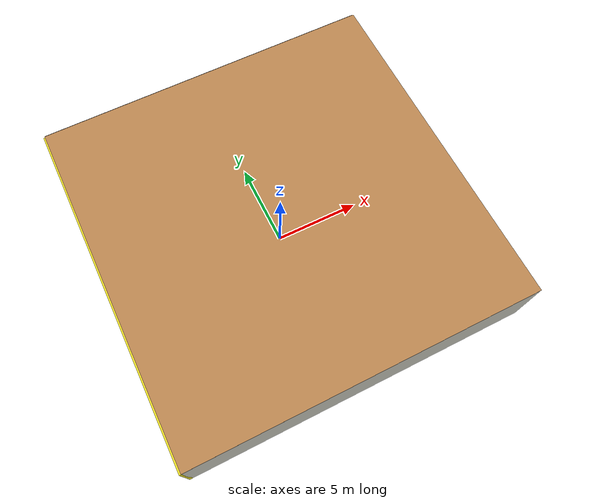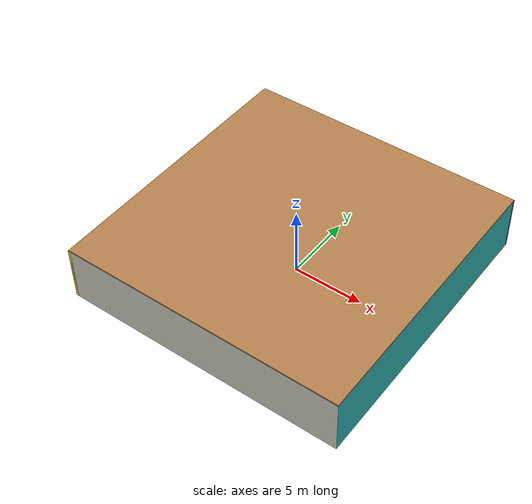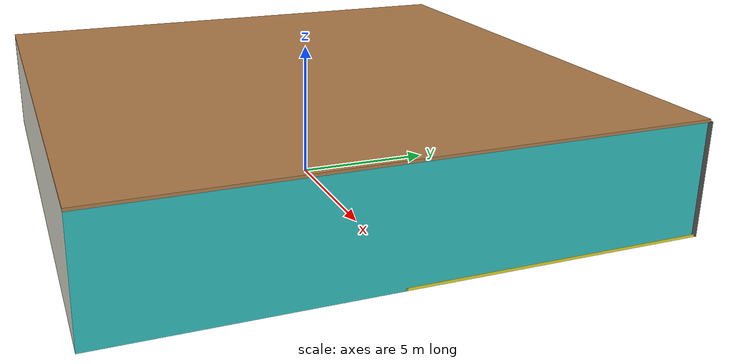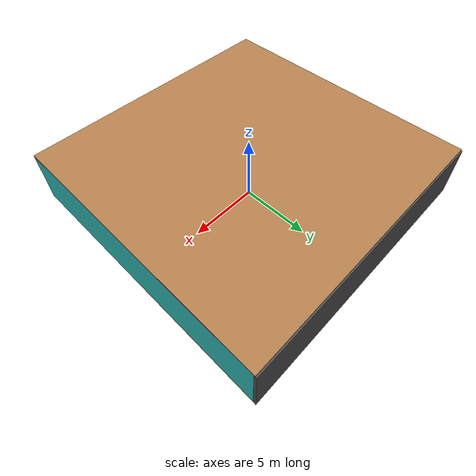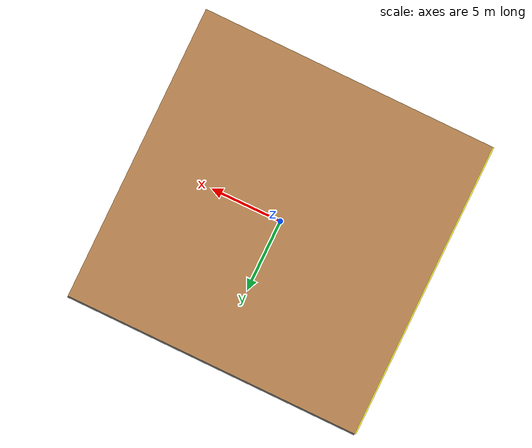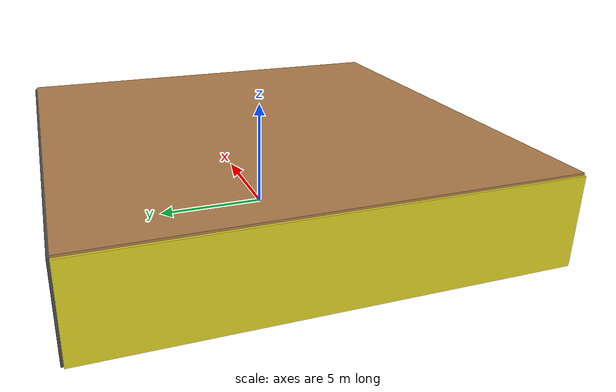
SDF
<sdf version="1.4">
 <world name="default">
  <physics type="ode">
   <max_step_size>0.001</max_step_size>
   <real_time_factor>1</real_time_factor>
   <real_time_update_rate>1000</real_time_update_rate>
   <gravity>0 0 -9.8</gravity>
  </physics>
  <scene><ambient>0.4 0.4 0.4 1</ambient><background>0.7 0.7 0.7 1</background><shadows>1</shadows></scene>
  <model name="Surrounding">
   <static>1</static>
   <link name="Ceiling">
    <collision name="Ceiling_Collision"><geometry><box><size>20 20 0.1</size></box></geometry></collision>
    <visual name="Ceiling_Visual">
     <geometry><box><size>20 20 0.1</size></box></geometry>
     <material>
      <script><uri>file://media/materials/scripts/gazebo.material</uri><name>Gazebo/WoodFloor</name></script>
     </material>
    </visual>
    <pose>0 0 4.05 0 0 0</pose>
   </link>
   <link name="Wall_South">
    <collision name="Wall_South_Collision">
     <geometry><box><size>20 0 4</size></box></geometry>
     <pose>0 0 2 0 -0 0</pose>
    </collision>
    <visual name="Wall_South_Visual">
     <pose>0 0 2 0 -0 0</pose>
     <geometry><box><size>20 0 4</size></box></geometry>
     <material>
      <script><uri>file://media/materials/scripts/gazebo.material</uri><name>Gazebo/PaintedWall</name></script>
     </material>
    </visual>
    <velocity_decay><linear>0</linear><angular>0</angular></velocity_decay>
    <pose>0 -10 0 0 -0 0</pose>
   </link>
   <link name="Wall_East">
    <collision name="Wall_21_Collision">
     <geometry><box><size>20 0 4</size></box></geometry>
     <pose>0 0 2 0 -0 0</pose>
    </collision>
    <visual name="Wall_21_Visual">
     <pose>0 0 2 0 -0 0</pose>
     <geometry><box><size>20 0 4</size></box></geometry>
     <material>
      <script><uri>file://media/materials/scripts/gazebo.material</uri><name>Gazebo/Turquoise</name></script>
     </material>
    </visual>
    <velocity_decay><linear>0</linear><angular>0</angular></velocity_decay>
    <pose>10 0 0 0 -0 1.5708</pose>
   </link>
   <link name="Wall_North">
    <collision name="Wall_22_Collision">
     <geometry><box><size>20 0.2 4</size></box></geometry>
     <pose>0 0 2 0 -0 0</pose>
    </collision>
    <visual name="Wall_22_Visual">
     <pose>0 0 2 0 -0 0</pose>
     <geometry><box><size>20 0.2 4</size></box></geometry>
     <material>
      <script><uri>file://media/materials/scripts/gazebo.material</uri><name>Gazebo/Road</name></script>
     </material>
    </visual>
    <velocity_decay><linear>0</linear><angular>0</angular></velocity_decay>
    <pose>0 10 0 0 -0 0</pose>
   </link>
   <link name="Wall_West">
    <collision name="Wall_23_Collision">
     <geometry><box><size>20 0.2 4</size></box></geometry>
     <pose>0 0 2 0 -0 0</pose>
    </collision>
    <visual name="Wall_23_Visual">
     <pose>0 0 2 0 -0 0</pose>
     <geometry><box><size>20 0.2 4</size></box></geometry>
     <material>
      <script><uri>file://media/materials/scripts/gazebo.material</uri><name>Gazebo/Yellow</name></script>
     </material>
    </visual>
    <velocity_decay><linear>0</linear><angular>0</angular></velocity_decay>
    <pose>-10 0 0 0 0 -1.5708</pose>
   </link>
   <link name="Ground_link">
    <collision name="collision">
     <pose>0 0 .05 0 -0 0</pose>
     <geometry><box><size>20 20 0.1</size></box></geometry>
    </collision>
    <visual name="visual">
     <pose>0 0 .05 0 -0 0</pose>
     <geometry><box><size>20 20 0.1</size></box></geometry>
     <material>
      <script><uri>file://media/materials/scripts/gazebo.material</uri><name>Gazebo/YellowGlow</name></script>
     </material>
    </visual>
   </link>
   <static>1</static>
  </model>
  <spherical_coordinates>
   <surface_model>EARTH_WGS84</surface_model>
   <latitude_deg>0</latitude_deg>
   <longitude_deg>0</longitude_deg>
   <elevation>0</elevation>
   <heading_deg>0</heading_deg>
  </spherical_coordinates>
  <light name="lightball_0" type="diffuse">
   <diffuse>0.8 0.8 0.8 1</diffuse>
   <specular>0.2 0.2 0.2 1</specular>
   <attenuation>
    <range>100</range>
    <constant>0.7</constant>
    <linear>0.01</linear>
    <quadratic>0.001</quadratic>
   </attenuation>
   <direction>-0.5 0.1 -0.9</direction>
   <pose>-1.2504180051 -3.98329851523 3.67980323006 0 0 0</pose>
  </light>
  <light name="lightball_1" type="diffuse">
   <diffuse>0.8 0.8 0.8 1</diffuse>
   <specular>0.2 0.2 0.2 1</specular>
   <attenuation>
    <range>100</range>
    <constant>0.7</constant>
    <linear>0.01</linear>
    <quadratic>0.001</quadratic>
   </attenuation>
   <direction>-0.5 0.1 -0.9</direction>
   <pose>-2.58385794866 -5.21350998646 1.96254543906 0 0 0</pose>
  </light>
  <light name="lightball_2" type="diffuse">
   <diffuse>0.8 0.8 0.8 1</diffuse>
   <specular>0.2 0.2 0.2 1</specular>
   <attenuation>
    <range>100</range>
    <constant>0.7</constant>
    <linear>0.01</linear>
    <quadratic>0.001</quadratic>
   </attenuation>
   <direction>-0.5 0.1 -0.9</direction>
   <pose>-7.99732842024 -3.17157922014 1.87299524436 0 0 0</pose>
  </light>
  <light name="lightball_3" type="diffuse">
   <diffuse>0.8 0.8 0.8 1</diffuse>
   <specular>0.2 0.2 0.2 1</specular>
   <attenuation>
    <range>100</range>
    <constant>0.7</constant>
    <linear>0.01</linear>
    <quadratic>0.001</quadratic>
   </attenuation>
   <direction>-0.5 0.1 -0.9</direction>
   <pose>2.04352727408 -7.82010218329 0.6949529033 0 0 0</pose>
  </light>
  <light name="lightball_4" type="diffuse">
   <diffuse>0.8 0.8 0.8 1</diffuse>
   <specular>0.2 0.2 0.2 1</specular>
   <attenuation>
    <range>100</range>
    <constant>0.7</constant>
    <linear>0.01</linear>
    <quadratic>0.001</quadratic>
   </attenuation>
   <direction>-0.5 0.1 -0.9</direction>
   <pose>-8.12449869115 4.45493271303 2.82189481285 0 0 0</pose>
  </light>
  <light name="lightball_5" type="diffuse">
   <diffuse>0.8 0.8 0.8 1</diffuse>
   <specular>0.2 0.2 0.2 1</specular>
   <attenuation>
    <range>100</range>
    <constant>0.7</constant>
    <linear>0.01</linear>
    <quadratic>0.001</quadratic>
   </attenuation>
   <direction>-0.5 0.1 -0.9</direction>
   <pose>8.49143988037 6.399295535 0.860737668062 0 0 0</pose>
  </light>
  <include>
   <uri>model://textured_shapes</uri>
   <pose>-6.73506923996 3.75072219267 0 0 0 0.257768577635</pose>
  </include>
  <include>
   <uri>model://construction_cone</uri>
   <pose>-4.65959765828 -7.55123679053 0 0 0 2.50916974686</pose>
  </include>
  <include>
   <uri>model://textured_shapes</uri>
   <pose>-3.70833055413 -4.91466926288 0 0 0 2.56375581083</pose>
  </include>
  <include><uri>model://cabinet</uri><pose>-4.45993595527 -2.1590381536 0 0 0 0.901986195635</pose></include>
  <include><uri>model://cabinet</uri><pose>4.30943459925 -1.3560679671 0 0 0 0.714608397215</pose></include>
 </world>
</sdf>

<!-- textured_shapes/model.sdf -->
<sdf version="1.6">
  <model name="textured_shapes">
    <pose>0 0 0.5 0 0 0</pose>
    <link name="box">
      <pose>0 -1.5 0 0 0 0</pose>
      <collision name="collision">
        <geometry>
          <box>
            <size>1 1 1</size>
          </box>
        </geometry>
      </collision>
      <visual name="visual">
        <geometry>
          <box>
            <size>1 1 1</size>
          </box>
        </geometry>
        <material>
          <script>
            <uri>model://../model_source/models/textured_shapes/materials/scripts</uri>
            <uri>model://../model_source/models/textured_shapes/materials/textures</uri>
            <name>TexturedShape/Squares</name>
          </script>
        </material>
      </visual>
    </link>
    <link name="sphere">
      <collision name="collision">
        <geometry>
          <sphere>
            <radius>0.5</radius>
          </sphere>
        </geometry>
      </collision>
      <visual name="visual">
        <geometry>
          <sphere>
            <radius>0.5</radius>
          </sphere>
        </geometry>
        <material>
          <script>
            <uri>model://../model_source/models/textured_shapes/materials/scripts</uri>
            <uri>model://../model_source/models/textured_shapes/materials/textures</uri>
            <name>TexturedShape/Squares</name>
          </script>
        </material>
      </visual>
    </link>
    <link name="cylinder">
      <pose>0 1.5 0 0 0 0</pose>
      <collision name="collision">
        <geometry>
          <cylinder>
            <radius>0.5</radius>
            <length>1</length>
          </cylinder>
        </geometry>
      </collision>
      <visual name="visual">
        <geometry>
          <cylinder>
            <radius>0.5</radius>
            <length>1</length>
          </cylinder>
        </geometry>
        <material>
          <script>
            <uri>model://../model_source/models/textured_shapes/materials/scripts</uri>
            <uri>model://../model_source/models/textured_shapes/materials/textures</uri>
            <name>TexturedShape/Squares</name>
          </script>
        </material>
      </visual>
    </link>
  </model>
</sdf>

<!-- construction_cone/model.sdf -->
<sdf version="1.5">
  <model name="Construction Cone">
    <link name="link">
      <collision name="collision">
        <geometry>
          <mesh>
            <scale>10 10 10</scale>
            <uri>file://isr-testbed/construction_cone/meshes/construction_cone.dae</uri>
          </mesh>
        </geometry>
      </collision>
      <visual name="visual">
        <geometry>
          <mesh>
            <scale>10 10 10</scale>
            <uri>file://isr-testbed/construction_cone/meshes/construction_cone.dae</uri>
          </mesh>
        </geometry>
      </visual>
    </link>
  </model>
</sdf>

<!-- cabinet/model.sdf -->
<sdf version="1.5">
  <model name="cabinet">
    <static>true</static>
    <link name="cabinet_bottom_plate">
      <inertial>
        <pose>0 0 -1 0 0 0</pose>
        <inertia>
          <ixx>2.050000</ixx>
          <ixy>0</ixy>
          <ixz>0</ixz>
          <iyy>2.050000</iyy>
          <iyz>0</iyz>
          <izz>2.050000</izz>
        </inertia>
        <mass>25.000000</mass>
      </inertial>
      <collision name="cabinet_bottom_plate_geom">
        <pose>0 0 0.010000 0 0 0</pose>
        <geometry>
          <box>
            <size>0.450000 0.450000 0.020000</size>
          </box>
        </geometry>
      </collision>
      <visual name="cabinet_bottom_plate_geom_visual">
        <pose>0 0 0.010000 0 0 0</pose>
        <geometry>
          <box>
            <size>0.450000 0.450000 0.020000</size>
          </box>
        </geometry>
        <material>
          <script>
            <uri>model://media/materials/scripts/gazebo.material</uri>
            <name>Gazebo/Wood</name>
          </script>
        </material>
      </visual>
      <collision name="cabinet_bottom_plate_geom_cabinet_back_plate">
        <pose>0.235000 0 0.510000 0 0 0</pose>
        <geometry>
          <box>
            <size>0.020000 0.450000 1.020000</size>
          </box>
        </geometry>
      </collision>
      <visual name="cabinet_bottom_plate_geom_cabinet_back_plate_visual">
        <pose>0.235000 0 0.510000 0 0 0</pose>
        <geometry>
          <box>
            <size>0.020000 0.450000 1.020000</size>
          </box>
        </geometry>
        <material>
          <script>
            <uri>model://media/materials/scripts/gazebo.material</uri>
            <name>Gazebo/Wood</name>
          </script>
        </material>
      </visual>
      <collision name="cabinet_bottom_plate_geom_cabinet_left_plate">
        <pose>0 0.235000 0.510000 0 0 0</pose>
        <geometry>
          <box>
            <size>0.450000 0.020000 1.020000</size>
          </box>
        </geometry>
      </collision>
      <visual name="cabinet_bottom_plate_geom_cabinet_left_plate_visual">
        <pose>0 0.235000 0.510000 0 0 0</pose>
        <geometry>
          <box>
            <size>0.450000 0.020000 1.020000</size>
          </box>
        </geometry>
        <material>
          <script>
            <uri>model://media/materials/scripts/gazebo.material</uri>
            <name>Gazebo/Wood</name>
          </script>
        </material>
      </visual>
      <collision name="cabinet_bottom_plate_geom_cabinet_middle_plate">
        <pose>0 0 0.510000 0 0 0</pose>
        <geometry>
          <box>
            <size>0.450000 0.450000 0.020000</size>
          </box>
        </geometry>
      </collision>
      <visual name="cabinet_bottom_plate_geom_cabinet_middle_plate_visual">
        <pose>0 0 0.510000 0 0 0</pose>
        <geometry>
          <box>
            <size>0.450000 0.450000 0.020000</size>
          </box>
        </geometry>
        <material>
          <script>
            <uri>model://media/materials/scripts/gazebo.material</uri>
            <name>Gazebo/Wood</name>
          </script>
        </material>
      </visual>
      <collision name="cabinet_bottom_plate_geom_cabinet_right_plate">
        <pose>0 -0.235000 0.510000 0 0 0</pose>
        <geometry>
          <box>
            <size>0.450000 0.020000 1.020000</size>
          </box>
        </geometry>
      </collision>
      <visual name="cabinet_bottom_plate_geom_cabinet_right_plate_visual">
        <pose>0 -0.235000 0.510000 0 0 0</pose>
        <geometry>
          <box>
            <size>0.450000 0.020000 1.020000</size>
          </box>
        </geometry>
        <material>
          <script>
            <uri>model://media/materials/scripts/gazebo.material</uri>
            <name>Gazebo/Wood</name>
          </script>
        </material>
      </visual>
      <collision name="cabinet_bottom_plate_geom_cabinet_top_plate">
        <pose>0 0 1.010000 0 0 0</pose>
        <geometry>
          <box>
            <size>0.450000 0.450000 0.020000</size>
          </box>
        </geometry>
      </collision>
      <visual name="cabinet_bottom_plate_geom_cabinet_top_plate_visual">
        <pose>0 0 1.010000 0 0 0</pose>
        <geometry>
          <box>
            <size>0.450000 0.450000 0.020000</size>
          </box>
        </geometry>
        <material>
          <script>
            <uri>model://media/materials/scripts/gazebo.material</uri>
            <name>Gazebo/Wood</name>
          </script>
        </material>
      </visual>
    </link>
  </model>
</sdf>
